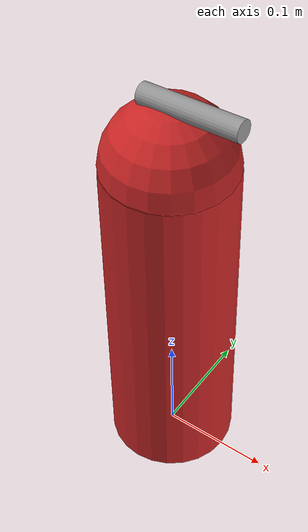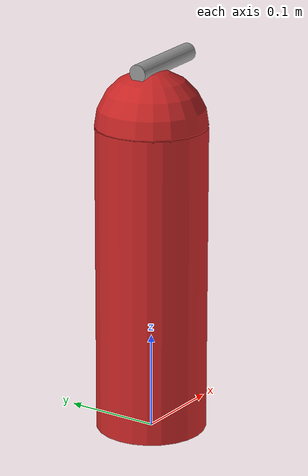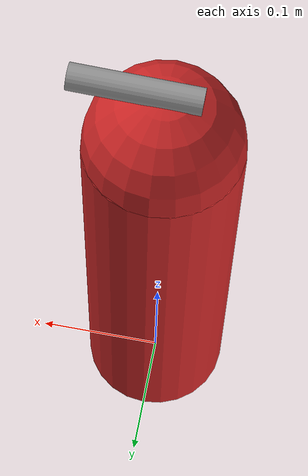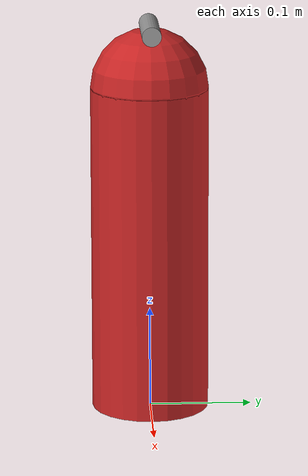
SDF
<?xml version='1.0'?>
<sdf version='1.6'>
  <model name='Fire_Extinguisher'>
    <link name='link_0'>
      <inertial>
        <mass>0.0242071</mass>
        <inertia>
          <ixx>0.000229816</ixx>
          <ixy>0</ixy>
          <ixz>0</ixz>
          <iyy>0.000229816</iyy>
          <iyz>0</iyz>
          <izz>4.00174e-05</izz>
        </inertia>
        <pose frame=''>0 0 0 0 -0 0</pose>
      </inertial>
      <pose frame=''>0 0 0 0 -0 0</pose>
      <gravity>1</gravity>
      <self_collide>0</self_collide>
      <kinematic>0</kinematic>
      <enable_wind>0</enable_wind>
      <visual name='visual'>
        <pose frame=''>0 0 0.1625 0 -0 0</pose>
        <geometry>
          <cylinder>
            <radius>0.0575</radius>
            <length>0.3225</length>
          </cylinder>
        </geometry>
        <material>
          <lighting>1</lighting>
          <script>
            <uri>file://media/materials/scripts/gazebo.material</uri>
            <name>Gazebo/Red</name>
          </script>
          <shader type='vertex'>
            <normal_map>__default__</normal_map>
          </shader>
          <ambient>1 0 0 1</ambient>
          <diffuse>1 0.1 0.1 1</diffuse>
          <specular>1 0 0 1</specular>
          <emissive>0 0 0 1</emissive>
        </material>
        <transparency>0</transparency>
        <cast_shadows>1</cast_shadows>
      </visual>
      <collision name='collision'>
        <laser_retro>0</laser_retro>
        <max_contacts>10</max_contacts>
        <pose frame=''>0 0 0.1625 0 -0 0</pose>
        <geometry>
          <cylinder>
            <radius>0.0575</radius>
            <length>0.3225</length>
          </cylinder>
        </geometry>
        <surface>
          <friction>
            <ode>
              <mu>1</mu>
              <mu2>1</mu2>
              <fdir1>0 0 0</fdir1>
              <slip1>0</slip1>
              <slip2>0</slip2>
            </ode>
            <torsional>
              <coefficient>1</coefficient>
              <patch_radius>0</patch_radius>
              <surface_radius>0</surface_radius>
              <use_patch_radius>1</use_patch_radius>
              <ode>
                <slip>0</slip>
              </ode>
            </torsional>
          </friction>
          <bounce>
            <restitution_coefficient>0</restitution_coefficient>
            <threshold>1e+06</threshold>
          </bounce>
          <contact>
            <collide_without_contact>0</collide_without_contact>
            <collide_without_contact_bitmask>1</collide_without_contact_bitmask>
            <collide_bitmask>1</collide_bitmask>
            <ode>
              <soft_cfm>0</soft_cfm>
              <soft_erp>0.2</soft_erp>
              <kp>1e+13</kp>
              <kd>1</kd>
              <max_vel>0.01</max_vel>
              <min_depth>0</min_depth>
            </ode>
            <bullet>
              <split_impulse>1</split_impulse>
              <split_impulse_penetration_threshold>-0.01</split_impulse_penetration_threshold>
              <soft_cfm>0</soft_cfm>
              <soft_erp>0.2</soft_erp>
              <kp>1e+13</kp>
              <kd>1</kd>
            </bullet>
          </contact>
        </surface>
      </collision>
    </link>
    <link name='link_0_0'>
      <inertial>
        <mass>0.00429496</mass>
        <inertia>
          <ixx>1.13445e-05</ixx>
          <ixy>0</ixy>
          <ixz>0</ixz>
          <iyy>1.13445e-05</iyy>
          <iyz>0</iyz>
          <izz>1.13445e-05</izz>
        </inertia>
        <pose frame=''>0 0 0 0 -0 0</pose>
      </inertial>
      <pose frame=''>0 0 0.325 0 -0 0</pose>
      <self_collide>0</self_collide>
      <enable_wind>0</enable_wind>
      <kinematic>0</kinematic>
      <visual name='visual'>
        <pose frame=''>0 0 0 0 -0 0</pose>
        <geometry>
          <sphere>
            <radius>0.0575</radius>
          </sphere>
        </geometry>
        <material>
          <lighting>1</lighting>
          <script>
            <uri>file://media/materials/scripts/gazebo.material</uri>
            <name>Gazebo/Red</name>
          </script>
          <emissive>0 0 0 1</emissive>
        </material>
        <transparency>0</transparency>
        <cast_shadows>1</cast_shadows>
      </visual>
      <collision name='collision'>
        <laser_retro>0</laser_retro>
        <max_contacts>10</max_contacts>
        <pose frame=''>0 0 0 0 -0 0</pose>
        <geometry>
          <sphere>
            <radius>0.051261</radius>
          </sphere>
        </geometry>
        <surface>
          <friction>
            <ode>
              <mu>1</mu>
              <mu2>1</mu2>
              <fdir1>0 0 0</fdir1>
              <slip1>0</slip1>
              <slip2>0</slip2>
            </ode>
            <torsional>
              <coefficient>1</coefficient>
              <patch_radius>0</patch_radius>
              <surface_radius>0</surface_radius>
              <use_patch_radius>1</use_patch_radius>
              <ode>
                <slip>0</slip>
              </ode>
            </torsional>
          </friction>
          <bounce>
            <restitution_coefficient>0</restitution_coefficient>
            <threshold>1e+06</threshold>
          </bounce>
          <contact>
            <collide_without_contact>0</collide_without_contact>
            <collide_without_contact_bitmask>1</collide_without_contact_bitmask>
            <collide_bitmask>1</collide_bitmask>
            <ode>
              <soft_cfm>0</soft_cfm>
              <soft_erp>0.2</soft_erp>
              <kp>1e+13</kp>
              <kd>1</kd>
              <max_vel>0.01</max_vel>
              <min_depth>0</min_depth>
            </ode>
            <bullet>
              <split_impulse>1</split_impulse>
              <split_impulse_penetration_threshold>-0.01</split_impulse_penetration_threshold>
              <soft_cfm>0</soft_cfm>
              <soft_erp>0.2</soft_erp>
              <kp>1e+13</kp>
              <kd>1</kd>
            </bullet>
          </contact>
        </surface>
      </collision>
    </link>
    <link name='link_1'>
      <inertial>
        <mass>3.14116e-05</mass>
        <inertia>
          <ixx>2.20033e-08</ixx>
          <ixy>0</ixy>
          <ixz>0</ixz>
          <iyy>2.20033e-08</iyy>
          <iyz>0</iyz>
          <izz>1.37319e-09</izz>
        </inertia>
        <pose frame=''>0 0 0 0 -0 0</pose>
      </inertial>
      <pose frame=''>0.02 0 0.385 3.14159 -1.52027 3.14159</pose>
      <visual name='visual'>
        <pose frame=''>0 0 0 0 -0 0</pose>
        <geometry>
          <cylinder>
            <radius>0.0093505</radius>
            <length>0.0902413</length>
          </cylinder>
        </geometry>
        <material>
          <lighting>1</lighting>
          <script>
            <uri>file://media/materials/scripts/gazebo.material</uri>
            <name>Gazebo/Grey</name>
          </script>
          <emissive>0 0 0 1</emissive>
        </material>
        <transparency>0</transparency>
        <cast_shadows>1</cast_shadows>
      </visual>
      <collision name='collision'>
        <laser_retro>0</laser_retro>
        <max_contacts>10</max_contacts>
        <pose frame=''>0 0 0 0 -0 0</pose>
        <geometry>
          <cylinder>
            <radius>0.009351</radius>
            <length>0.090241</length>
          </cylinder>
        </geometry>
        <surface>
          <friction>
            <ode>
              <mu>1</mu>
              <mu2>1</mu2>
              <fdir1>0 0 0</fdir1>
              <slip1>0</slip1>
              <slip2>0</slip2>
            </ode>
            <torsional>
              <coefficient>1</coefficient>
              <patch_radius>0</patch_radius>
              <surface_radius>0</surface_radius>
              <use_patch_radius>1</use_patch_radius>
              <ode>
                <slip>0</slip>
              </ode>
            </torsional>
          </friction>
          <bounce>
            <restitution_coefficient>0</restitution_coefficient>
            <threshold>1e+06</threshold>
          </bounce>
          <contact>
            <collide_without_contact>0</collide_without_contact>
            <collide_without_contact_bitmask>1</collide_without_contact_bitmask>
            <collide_bitmask>1</collide_bitmask>
            <ode>
              <soft_cfm>0</soft_cfm>
              <soft_erp>0.2</soft_erp>
              <kp>1e+13</kp>
              <kd>1</kd>
              <max_vel>0.01</max_vel>
              <min_depth>0</min_depth>
            </ode>
            <bullet>
              <split_impulse>1</split_impulse>
              <split_impulse_penetration_threshold>-0.01</split_impulse_penetration_threshold>
              <soft_cfm>0</soft_cfm>
              <soft_erp>0.2</soft_erp>
              <kp>1e+13</kp>
              <kd>1</kd>
            </bullet>
          </contact>
        </surface>
      </collision>
    </link>
    <joint name='link_0_0_JOINT_2' type='fixed'>
      <parent>link_0_0</parent>
      <child>link_1</child>
      <pose frame=''>0 0 0 0 -0 0</pose>
      <physics>
        <ode>
          <limit>
            <cfm>0</cfm>
            <erp>0.2</erp>
          </limit>
          <suspension>
            <cfm>0</cfm>
            <erp>0.2</erp>
          </suspension>
        </ode>
      </physics>
    </joint>
    <joint name='link_0_JOINT_0' type='fixed'>
      <parent>link_0</parent>
      <child>link_0_0</child>
      <pose frame=''>0 0 0 0 -0 0</pose>
      <physics>
        <ode>
          <limit>
            <cfm>0</cfm>
            <erp>0.2</erp>
          </limit>
          <suspension>
            <cfm>0</cfm>
            <erp>0.2</erp>
          </suspension>
        </ode>
      </physics>
    </joint>
    <static>1</static>
    <allow_auto_disable>1</allow_auto_disable>
  </model>
</sdf>
